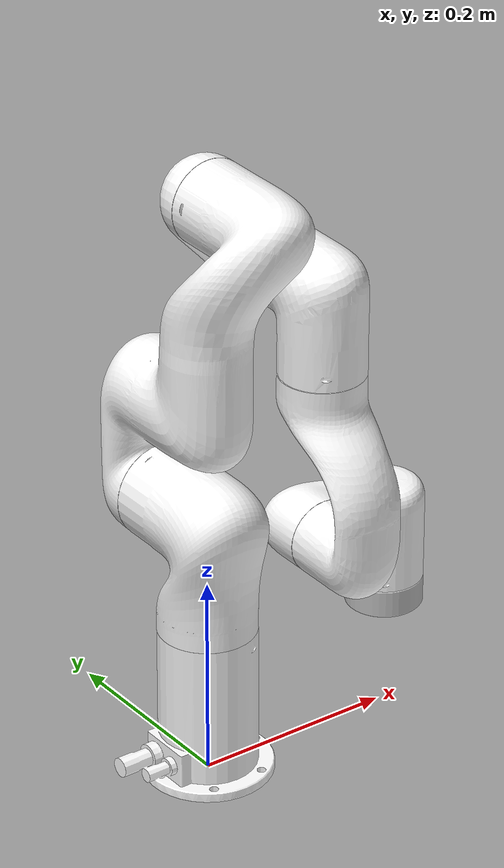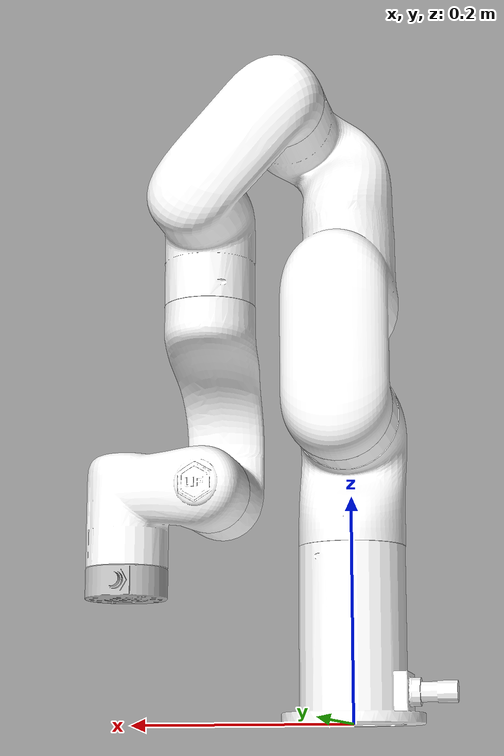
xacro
<?xml version='1.0' encoding='utf-8'?>
<robot xmlns:xacro="http://ros.org/wiki/xacro" name="xarm6">
  <xacro:arg name="prefix" default=""/>
  <xacro:arg name="ros_namespace" default="xarm"/>
  <xacro:arg name="limited" default="false"/>
  <xacro:arg name="effort_control" default="false"/>
  <xacro:arg name="velocity_control" default="false"/>

  <xacro:arg name="add_other_geometry" default="false"/>
  <xacro:arg name="geometry_type" default="box"/>
  <xacro:arg name="geometry_mass" default="0.1"/>
  <xacro:arg name="geometry_height" default="0.1"/>
  <xacro:arg name="geometry_radius" default="0.1"/>
  <xacro:arg name="geometry_length" default="0.1"/>
  <xacro:arg name="geometry_width" default="0.1"/>
  <xacro:arg name="geometry_mesh_filename" default=""/>
  <xacro:arg name="geometry_mesh_origin_xyz" default="0 0 0"/>
  <xacro:arg name="geometry_mesh_origin_rpy" default="0 0 0"/>
  <xacro:arg name="geometry_mesh_tcp_xyz" default="0 0 0"/>
  <xacro:arg name="geometry_mesh_tcp_rpy" default="0 0 0"/>

  <xacro:arg name="add_realsense_d435i" default="false"/>

  <!-- load xarm6 robot -->
  <xacro:include filename="xarm6_robot_macro.xacro" />
  <xacro:xarm6_robot prefix="$(arg prefix)" namespace="$(arg ros_namespace)" limited="$(arg limited)"
    effort_control="$(arg effort_control)" velocity_control="$(arg velocity_control)"
    rs_d435i="$(arg add_realsense_d435i)"
    add_other_geometry="$(arg add_other_geometry)"
    geometry_type="$(arg geometry_type)" geometry_mass="$(arg geometry_mass)"
    geometry_height="$(arg geometry_height)" geometry_radius="$(arg geometry_radius)"
    geometry_length="$(arg geometry_length)" geometry_width="$(arg geometry_width)"
    geometry_mesh_filename="$(arg geometry_mesh_filename)"
    geometry_mesh_origin_xyz="$(arg geometry_mesh_origin_xyz)" geometry_mesh_origin_rpy="$(arg geometry_mesh_origin_rpy)"
    geometry_mesh_tcp_xyz="$(arg geometry_mesh_tcp_xyz)" geometry_mesh_tcp_rpy="$(arg geometry_mesh_tcp_rpy)" />

</robot>

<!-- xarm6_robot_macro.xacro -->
<robot xmlns:xacro="http://ros.org/wiki/xacro" name="xarm6" >
  <xacro:macro name="xarm6_robot" params="prefix:='' namespace:='xarm' limited:='false' effort_control:='false'
    velocity_control:='false' attach_to:='world' xyz:='0 0 0' rpy:='0 0 0' load_gazebo_plugin:='true' rs_d435i:='false'
    add_other_geometry:='false'
    geometry_type:='box' geometry_mass:='0.1'
    geometry_radius:='0.1' geometry_height:='0.1'
    geometry_length:='0.1' geometry_width:='0.1'
    geometry_mesh_filename:=''
    geometry_mesh_origin_xyz:='0 0 0'
    geometry_mesh_origin_rpy:='0 0 0'
    geometry_mesh_tcp_xyz:='0 0 0'
    geometry_mesh_tcp_rpy:='0 0 0' ">

    <!-- include xarm6 relative macros: -->
    <xacro:include filename="xarm6.urdf.xacro" />
    <xacro:include filename="xarm6.transmission.xacro" />
    <xacro:include filename="xarm6.gazebo.xacro" />

    <!-- gazebo_plugin -->
    <xacro:if value="${load_gazebo_plugin}">
    <xacro:include filename="common.gazebo.xacro" />
    <xacro:gazebo_ros_control_plugin namespace="${namespace}"/>
    </xacro:if>

    <!-- add one world link if no 'attach_to' specified  -->
    <xacro:if value="${attach_to == 'world'}">
      <link name="world" />
    </xacro:if>

    <joint name="${prefix}world_joint" type="fixed">
      <parent link="${attach_to}" />
      <child link = "${prefix}link_base" />
      <origin xyz="${xyz}" rpy="${rpy}" />
    </joint>

    <xacro:if value="${limited}">
      <xacro:xarm6_urdf prefix="${prefix}"
        joint1_lower_limit="${-pi*0.99}" joint1_upper_limit="${pi*0.99}"
        joint2_lower_limit="${-2.059}" joint2_upper_limit="${2.0944}"
        joint3_lower_limit="${-pi*0.99}" joint3_upper_limit="${0.19198}"
        joint4_lower_limit="${-pi*0.99}" joint4_upper_limit="${pi*0.99}"
        joint5_lower_limit="${-1.69297}" joint5_upper_limit="${pi*0.99}"
        joint6_lower_limit="${-pi*0.99}" joint6_upper_limit="${pi*0.99}"
        rs_d435i="${rs_d435i}"/>
    </xacro:if>
    <xacro:unless value="${limited}">
      <xacro:xarm6_urdf prefix="${prefix}" rs_d435i="${rs_d435i}"/>
    </xacro:unless>

    <xacro:xarm6_transmission prefix="${prefix}" hard_interface="$(eval 'EffortJointInterface' if ${effort_control} else 'VelocityJointInterface' if ${velocity_control} else 'PositionJointInterface')" />

    <xacro:xarm6_gazebo prefix="${prefix}" />

    <xacro:if value="${add_other_geometry}">
      <xacro:include filename="other_geometry.urdf.xacro" />
      <xacro:other_geometry prefix="${prefix}" attach_to="${prefix}link_eef"
        geometry_type="${geometry_type}" geometry_mass="${geometry_mass}"
        geometry_height="${geometry_height}" geometry_radius="${geometry_radius}"
        geometry_length="${geometry_length}" geometry_width="${geometry_width}"
        geometry_mesh_filename="${geometry_mesh_filename}"
        geometry_mesh_origin_xyz="${geometry_mesh_origin_xyz}" geometry_mesh_origin_rpy="${geometry_mesh_origin_rpy}"
        geometry_mesh_tcp_xyz="${geometry_mesh_tcp_xyz}" geometry_mesh_tcp_rpy="${geometry_mesh_tcp_rpy}"
      />
    </xacro:if>

  </xacro:macro>

</robot>

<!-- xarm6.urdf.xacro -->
<robot xmlns:xacro="http://ros.org/wiki/xacro">

  <xacro:macro name="xarm6_urdf" params="prefix
    joint1_lower_limit:=${-2.0*pi}  joint1_upper_limit:=${2.0*pi}
    joint2_lower_limit:=${-2.059}  joint2_upper_limit:=${2.0944}
    joint3_lower_limit:=${-3.927}  joint3_upper_limit:=${0.19198}
    joint4_lower_limit:=${-2.0*pi}  joint4_upper_limit:=${2.0*pi}
    joint5_lower_limit:=${-1.69297}  joint5_upper_limit:=${pi}
    joint6_lower_limit:=${-2.0*pi}  joint6_upper_limit:=${2.0*pi}
    rs_d435i:=false">

    <material name="${prefix}Black">
      <color rgba="0.0 0.0 0.0 1.0"/>
    </material>

    <material name="${prefix}Red">
      <color rgba="0.8 0.0 0.0 1.0"/>
    </material>

    <material name="${prefix}White">
      <color rgba="1.0 1.0 1.0 1.0"/>
    </material>

    <material name="${prefix}Silver">
      <color rgba="0.753 0.753 0.753 1.0"/>
    </material>

    <link name="${prefix}link_base">
      <visual>
        <geometry>
          <mesh filename="package://xarm_description/meshes/xarm6/visual/base.stl"/>
        </geometry>
        <origin xyz="0 0 0" rpy="0 0 0"/>
        <material name="${prefix}White" />
      </visual>
      <collision>
        <geometry>
          <mesh filename="package://xarm_description/meshes/xarm6/visual/base.stl"/>
        </geometry>
        <origin xyz="0 0 0" rpy="0 0 0"/>
      </collision>
      <inertial>
      <origin xyz="0.0 0.0 0.09103" rpy="0 0 0" />
      <mass value="2.7" />
      <inertia
        ixx="0.00494875"
        ixy="-3.5E-06"
        ixz="1.25E-05"
        iyy="0.00494174"
        iyz="1.67E-06"
        izz="0.002219" />
      </inertial>
    </link>

    <link name="${prefix}link1">
      <visual>
        <geometry>
          <mesh filename="package://xarm_description/meshes/xarm6/visual/link1.stl"/>
        </geometry>
        <origin xyz="0 0 0" rpy="0 0 0"/>
        <material name="${prefix}White" />
      </visual>
      <collision>
        <geometry>
          <mesh filename="package://xarm_description/meshes/xarm6/visual/link1.stl"/>
        </geometry>
        <origin xyz="0 0 0" rpy="0 0 0"/>
      </collision>
      <inertial>
        <origin xyz="-0.002 0.02692 -0.01332" rpy="0 0 0"/>
        <mass value="2.16"/>
        <inertia
          ixx="0.00539427"
          ixy="1.095E-05"
          ixz="1.635E-06"
          iyy="0.0048979"
          iyz="0.000793"
          izz="0.00311573"/>
      </inertial>
    </link>

    <joint name="${prefix}joint1" type="revolute">
      <parent link="${prefix}link_base"/>
      <child  link="${prefix}link1"/>
      <origin xyz="0 0 0.267" rpy="0 0 0"/>
      <axis   xyz="0 0 1"/>
      <limit
        lower="${joint1_lower_limit}"
        upper="${joint1_upper_limit}"
        effort="50.0"
        velocity="3.14"/>
      <dynamics damping="1.0" friction="1.0"/>
    </joint>

    <link name="${prefix}link2">
      <visual>
        <geometry>
          <mesh filename="package://xarm_description/meshes/xarm6/visual/link2.stl"/>
        </geometry>
        <origin xyz="0 0 0" rpy="0 0 0"/>
        <material name="${prefix}White" />
      </visual>
      <collision>
        <geometry>
          <mesh filename="package://xarm_description/meshes/xarm6/visual/link2.stl"/>
        </geometry>
        <origin xyz="0 0 0" rpy="0 0 0"/>
      </collision>
      <inertial>
      <origin
        xyz="0.03531 -0.21398 0.03386"
        rpy="0 0 0" />
      <mass
        value="1.71" />
      <inertia
        ixx="0.0248674"
        ixy="-0.00430651"
        ixz="-0.00067797"
        iyy="0.00485548"
        iyz="0.00457245"
        izz="0.02387827" />
    </inertial>
    </link>

    <joint name="${prefix}joint2" type="revolute">
      <parent link="${prefix}link1"/>
      <child link="${prefix}link2"/>
      <origin xyz="0 0 0" rpy="-1.5708 0 0" />
      <axis xyz="0 0 1"/>
      <limit
        lower="${joint2_lower_limit}"
        upper="${joint2_upper_limit}"
        effort="50.0"
        velocity="3.14"/>
      <dynamics damping="1.0" friction="1.0"/>
    </joint>

    <link name="${prefix}link3">
      <visual>
        <geometry>
          <mesh filename="package://xarm_description/meshes/xarm6/visual/link3.stl"/>
        </geometry>
        <origin xyz="0 0 0" rpy="0 0 0"/>
        <material name="${prefix}White" />
      </visual>
      <collision>
        <geometry>
          <mesh filename="package://xarm_description/meshes/xarm6/visual/link3.stl"/>
        </geometry>
        <origin xyz="0 0 0" rpy="0 0 0"/>
      </collision>
      <inertial>
      <origin
        xyz="0.06781 0.10749 0.01457"
        rpy="0 0 0" />
      <mass
        value="1.384" />
      <inertia
        ixx="0.0053694"
        ixy="0.0014185"
        ixz="-0.00092094"
        iyy="0.0032423"
        iyz="-0.00169178"
        izz="0.00501731" />
    </inertial>
    </link>

    <joint name="${prefix}joint3" type="revolute">
      <parent link="${prefix}link2"/>
      <child link="${prefix}link3"/>
      <origin xyz="0.0535 -0.2845 0" rpy="0 0 0"/>
      <axis xyz="0 0 1"/>
      <limit
        lower="${joint3_lower_limit}"
        upper="${joint3_upper_limit}"
        effort="32.0"
        velocity="3.14"/>
      <dynamics damping="1.0" friction="1.0"/>
    </joint>

    <link name="${prefix}link4">
      <visual>
        <geometry>
          <mesh filename="package://xarm_description/meshes/xarm6/visual/link4.stl"/>
        </geometry>
        <origin xyz="0 0 0" rpy="0 0 0"/>
        <material name="${prefix}White" />
      </visual>
      <collision>
        <geometry>
          <mesh filename="package://xarm_description/meshes/xarm6/visual/link4.stl"/>
        </geometry>
        <origin xyz="0 0 0" rpy="0 0 0"/>
      </collision>
      <inertial>
        <origin xyz="-0.00021 0.02578 -0.02538" rpy="0 0 0"/>
        <mass value="1.115"/>
        <inertia
          ixx="0.00439263"
          ixy="5.028E-05"
          ixz="1.374E-05"
          iyy="0.0040077"
          iyz="0.00045338"
          izz="0.00110321"/>
      </inertial>
    </link>

    <joint name="${prefix}joint4" type="revolute">
      <parent link="${prefix}link3"/>
      <child link="${prefix}link4"/>
      <origin xyz="0.0775 0.3425 0" rpy="-1.5708 0 0"/>
      <axis xyz="0 0 1"/>
      <limit
        lower="${joint4_lower_limit}"
        upper="${joint4_upper_limit}"
        effort="32.0"
        velocity="3.14"/>
      <dynamics damping="1.0" friction="1.0"/>
    </joint>

    <link name="${prefix}link5">
      <visual>
        <geometry>
          <mesh filename="package://xarm_description/meshes/xarm6/visual/link5.stl"/>
        </geometry>
        <origin xyz="0 0 0" rpy="0 0 0"/>
        <material name="${prefix}White" />
      </visual>
      <collision>
        <geometry>
          <mesh filename="package://xarm_description/meshes/xarm6/visual/link5.stl"/>
        </geometry>
        <origin xyz="0 0 0" rpy="0 0 0"/>
      </collision>
      <inertial>
      <origin
        xyz="0.05428 0.01781 0.00543"
        rpy="0 0 0" />
      <mass
        value="1.275" />
      <inertia
        ixx="0.001202758"
        ixy="0.000492428"
        ixz="-0.00039147"
        iyy="0.0022876"
        iyz="-1.235E-04"
        izz="0.0026866" />
    </inertial>
    </link>

    <joint name="${prefix}joint5" type="revolute">
      <parent link="${prefix}link4"/>
      <child link="${prefix}link5"/>
      <origin xyz="0 0 0" rpy="1.5708 0 0"/>
      <axis xyz="0 0 1"/>
      <limit
        lower="${joint5_lower_limit}"
        upper="${joint5_upper_limit}"
        effort="32.0"
        velocity="3.14"/>
      <dynamics damping="1.0" friction="1.0"/>
    </joint>

    <link name="${prefix}link6">
      <visual>
        <geometry>
          <mesh filename="package://xarm_description/meshes/xarm6/visual/link6.stl"/>
        </geometry>
        <origin xyz="0 0 0" rpy="0 0 0"/>
        <material name="${prefix}Silver" />
      </visual>
      <collision>
        <geometry>
          <mesh filename="package://xarm_description/meshes/collision/end_tool.STL"/>
        </geometry>
        <origin xyz="0 0 0" rpy="0 0 0"/>
      </collision>
      <inertial>
      <origin
        xyz="0 0.00064 -0.00952"
        rpy="0 0 0" />
      <mass
        value="0.1096" />
      <inertia
        ixx="4.5293E-05"
        ixy="0"
        ixz="0"
        iyy="4.8111E-05"
        iyz="0"
        izz="7.9715E-05" />
    </inertial>
    </link>

    <joint name="${prefix}joint6" type="revolute">
      <parent link="${prefix}link5"/>
      <child link="${prefix}link6"/>
      <origin xyz="0.076 0.097 0" rpy="-1.5708 0 0"/>
      <axis xyz="0 0 1"/>
      <limit
        lower="${joint6_lower_limit}"
        upper="${joint6_upper_limit}"
        effort="20.0"
        velocity="3.14"/>
      <dynamics damping="1.0" friction="1.0"/>
    </joint>

  <xacro:if value="${rs_d435i}">
    <link name="${prefix}link_eef">
      <visual>
        <origin
          xyz="0 0 0"
          rpy="0 0 0" />
        <geometry>
          <mesh
            filename="package://d435i_xarm_setup/mesh/d435_with_cam_stand.STL" />
        </geometry>
        <material name="Silver" />
      </visual>
      <collision>
        <origin
          xyz="0 0 0"
          rpy="0 0 0" />
        <geometry>
          <mesh
            filename="package://d435i_xarm_setup/mesh/d435_with_cam_stand_collision.STL" />
        </geometry>
      </collision>
    </link>
  </xacro:if>

  <xacro:unless value="${rs_d435i}">
    <link name="${prefix}link_eef"/>
  </xacro:unless>

  <joint
    name="${prefix}joint_eef"
    type="fixed">
    <origin
      xyz="0 0 0"
      rpy="0 0 0" />
    <parent
      link="${prefix}link6" />
    <child
      link="${prefix}link_eef" />
  </joint>

  </xacro:macro>
</robot>
